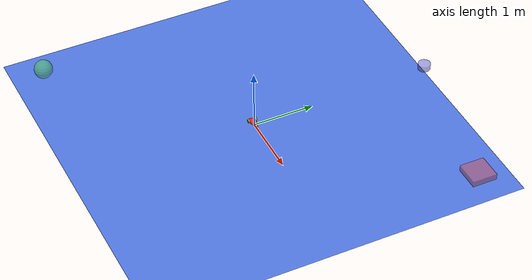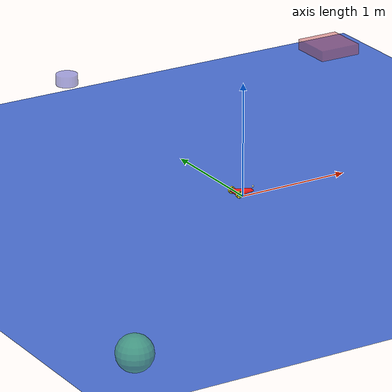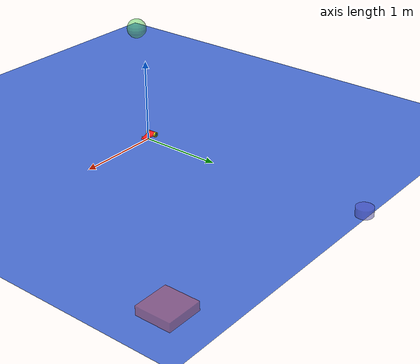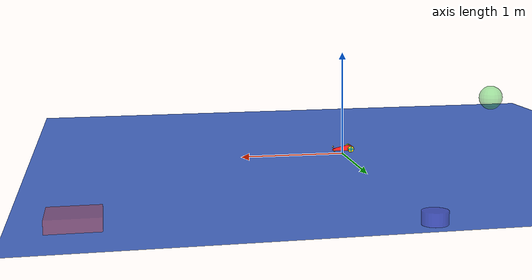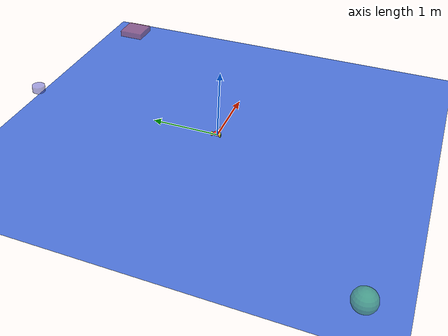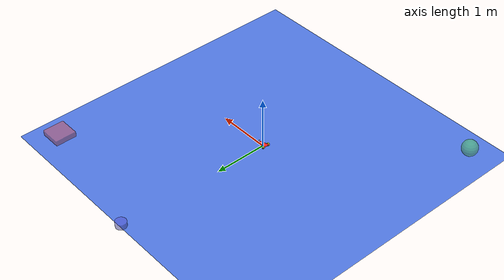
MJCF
<?xml version="1.0" ?>
<mujoco model="Simple Car Color">
  <compiler autolimits="true"/>

  <option timestep="0.002" iterations="50" solver="Newton" tolerance="1e-10">
    <flag gravity="enable"/>
  </option>

  <asset>
    <!-- 新地面：蓝色系棋盘格 -->
    <texture name="grid" type="2d" builtin="checker" width="512" height="512"
             rgb1=".2 .3 .8" rgb2=".4 .6 .9"/>
    <material name="grid" texture="grid" texrepeat="2 2" texuniform="true" reflectance=".2"/>

    <!-- 新车身材质：亮红色 -->
    <material name="car_body" rgba="1.0 0.1 0.1 1.0" specular="0.3" shininess="0.3"/>

    <!-- 新车轮材质：亮黄色 -->
    <material name="car_wheel" rgba="1.0 0.9 0.1 1.0" specular="0.2" shininess="0.2"/>

    <!-- 新装饰材质：亮青色（带发光效果） -->
    <material name="car_decor" rgba="0.1 0.9 0.9 1.0" specular="0.5" shininess="0.5"/>

    <!-- 发光材质用于前灯 -->
    <material name="light_glow" rgba="1.0 1.0 0.8 1.0"/>

    <mesh name="chasis" scale=".01 .006 .0015"
      vertex=" 9   2   0
              -10  10  10
               9  -2   0
               10  3  -10
               10 -3  -10
              -8   10 -10
              -10 -10  10
              -8  -10 -10
              -5   0   20"/>
  </asset>

  <default>
    <joint damping=".05" armature="0.005"/>
    <geom friction="1 0.5 0.5" condim="3"/>
    <default class="wheel">
      <geom type="cylinder" size=".03 .01" material="car_wheel" friction="1.5 0.5 0.5"/>
    </default>
    <default class="decor">
      <site type="box" material="car_decor"/>
    </default>
  </default>

  <worldbody>
    <!-- 新外观的地面 -->
    <geom type="plane" size="3 3 .01" material="grid" friction="1 0.5 0.5" condim="3"/>

    <!-- 添加背景装饰（半透明效果） -->
    <geom type="box" pos="2.5 2.5 0.1" size="0.2 0.2 0.05" rgba="0.8 0.3 0.3 0.5"/>
    <geom type="sphere" pos="-2.5 -2.5 0.15" size="0.15" rgba="0.3 0.8 0.3 0.5"/>
    <geom type="cylinder" pos="0 3 0.1" size="0.1 0.05" rgba="0.3 0.3 0.8 0.5"/>

    <body name="car" pos="0 0 .05">
      <freejoint/>
      <inertial pos="0 0 0" mass="1" diaginertia="0.02 0.02 0.03"/>
      <light name="top light" pos="0 0 2" mode="trackcom" diffuse=".8 .8 .8"/>

      <!-- 红色车身 -->
      <geom name="chasis" type="mesh" mesh="chasis" material="car_body"/>

      <!-- 黄色前轮 -->
      <geom name="front wheel" pos=".08 0 -.015" type="sphere" size=".015" material="car_wheel" condim="1" priority="1"/>

      <!-- 增强前灯 -->
      <light name="front light" pos=".1 0 .02" dir="2 0 -1" diffuse="1 1 0.8"/>
      <geom name="front_light_vis" pos=".1 0 .02" type="sphere" size=".008" material="light_glow"/>

      <!-- 黄色左后轮 -->
      <body name="left wheel" pos="-.07 .06 0" zaxis="0 1 0">
        <joint name="left"/>
        <geom class="wheel"/>
        <site class="decor" size=".006 .025 .012"/>
        <site class="decor" size=".025 .006 .012"/>
      </body>

      <!-- 黄色右后轮 -->
      <body name="right wheel" pos="-.07 -.06 0" zaxis="0 1 0">
        <joint name="right"/>
        <geom class="wheel"/>
        <site class="decor" size=".006 .025 .012"/>
        <site class="decor" size=".025 .006 .012"/>
      </body>
    </body>
  </worldbody>

  <tendon>
    <fixed name="forward">
      <joint joint="left" coef=".5"/>
      <joint joint="right" coef=".5"/>
    </fixed>
    <fixed name="turn">
      <joint joint="left" coef="-.5"/>
      <joint joint="right" coef=".5"/>
    </fixed>
  </tendon>

  <actuator>
    <motor name="forward" tendon="forward" ctrlrange="-1 1" gear="12"/>
    <motor name="turn" tendon="turn" ctrlrange="-1 1" gear="6"/>
  </actuator>
</mujoco>
